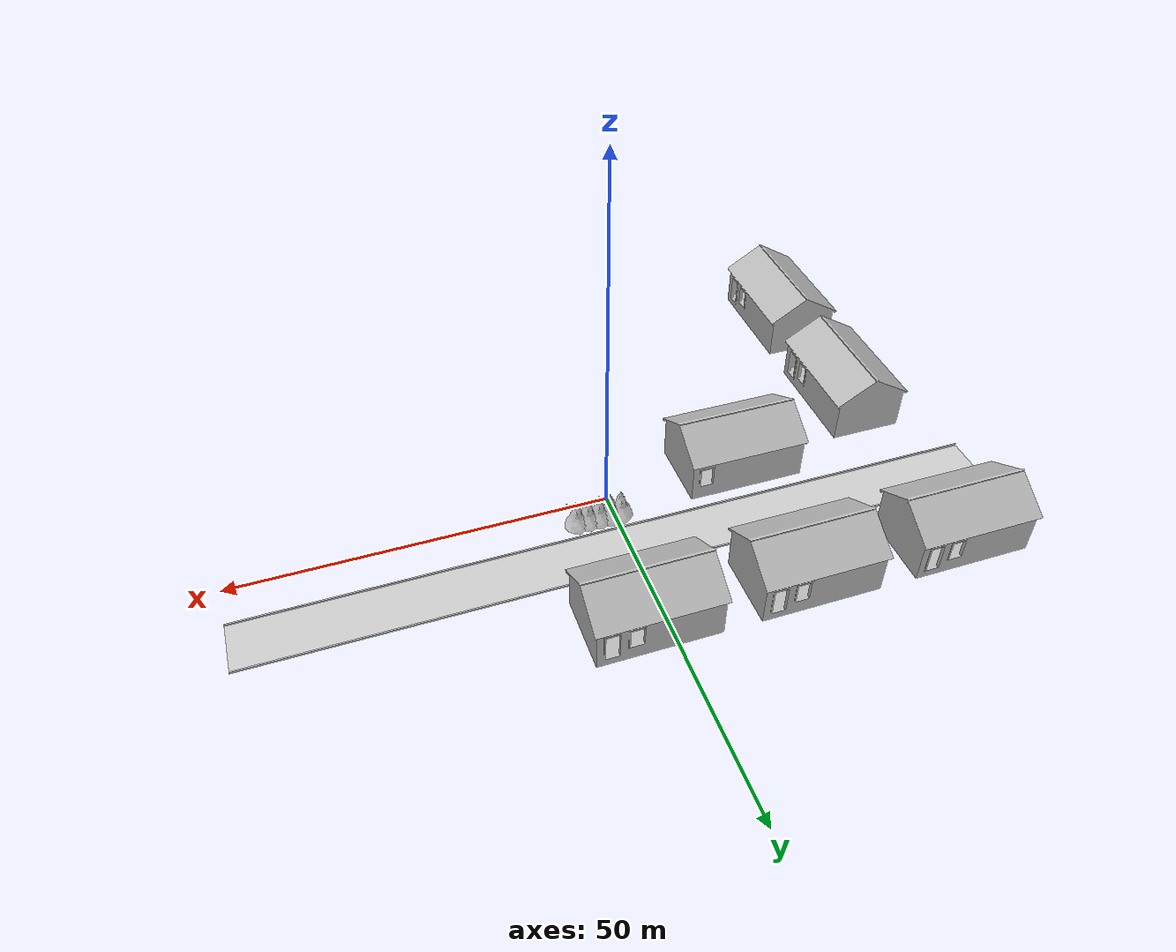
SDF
<sdf version="1.6">
 <world name="default">
  <light type="directional" name="sun">
   <pose>0.0 0.0 1000 -0.35 -0.5 0</pose>
   <diffuse>0.8 0.8 0.8 1</diffuse>
   <specular>0.2 0.2 0.2 1</specular>
   <attenuation>
    <range>1000</range>
    <constant>0.9</constant>
    <linear>0.01</linear>
    <quadratic>0.001</quadratic>
   </attenuation>
   <direction>-0.5 0.1 -0.9</direction>
  </light>
  <light type="spot" name="spot1">
   <pose>0 10 9 -0.1 0 0</pose>
   <diffuse>1 0.8431372549019608 0.4588235294117647 1</diffuse>
   <specular>.2 .2 .2 1</specular>
   <attenuation>
    <range>20</range>
    <linear>0.01</linear>
    <constant>0.2</constant>
    <quadratic>0.0</quadratic>
   </attenuation>
   <direction>0 0 -1</direction>
   <spot><inner_angle>0.11</inner_angle><outer_angle>20</outer_angle><falloff>40</falloff></spot>
   <cast_shadows>false</cast_shadows>
  </light>
  <light type="spot" name="spot2">
   <pose>-20 10 9 -0.1 0 0</pose>
   <diffuse>1 0.8431372549019608 0.4588235294117647 1</diffuse>
   <specular>.2 .2 .2 1</specular>
   <attenuation>
    <range>20</range>
    <linear>0.01</linear>
    <constant>0.2</constant>
    <quadratic>0.0</quadratic>
   </attenuation>
   <direction>0 0 -1</direction>
   <spot><inner_angle>0.11</inner_angle><outer_angle>20</outer_angle><falloff>40</falloff></spot>
   <cast_shadows>false</cast_shadows>
  </light>
  <light type="spot" name="spot3">
   <pose>-40 10 9 -0.1 0 0</pose>
   <diffuse>1 0.8431372549019608 0.4588235294117647 1</diffuse>
   <specular>.2 .2 .2 1</specular>
   <attenuation>
    <range>20</range>
    <linear>0.01</linear>
    <constant>0.2</constant>
    <quadratic>0.0</quadratic>
   </attenuation>
   <direction>0 0 -1</direction>
   <spot><inner_angle>0.11</inner_angle><outer_angle>20</outer_angle><falloff>40</falloff></spot>
   <cast_shadows>false</cast_shadows>
  </light>
  <gravity>0 0 -9.8</gravity>
  <magnetic_field>6e-06 2.3e-05 -4.2e-05</magnetic_field>
  <atmosphere type="adiabatic"/>
  <physics name="default_physics" default="0" type="ode">
   <dart><collision_detector>bullet</collision_detector></dart>
   <max_step_size>0.005</max_step_size>
   <real_time_factor>1</real_time_factor>
   <real_time_update_rate>200</real_time_update_rate>
  </physics>
  <scene>
   <ambient>0.9 0.9 0.9 1</ambient>
   <sky><clouds><speed>8</speed></clouds></sky>
   <grid>false</grid>
   <background>0.7 0.7 0.7 1</background>
   <shadows>1</shadows>
  </scene>
  <spherical_coordinates>
   <surface_model>EARTH_WGS84</surface_model>
   <latitude_deg>0</latitude_deg>
   <longitude_deg>0</longitude_deg>
   <elevation>0</elevation>
   <heading_deg>0</heading_deg>
  </spherical_coordinates>
  <include><uri>model://runway</uri><pose>0 9.15 0.05 0 0 1.571428571</pose><static>true</static></include>
  <include>
   <uri>model://pine_tree</uri>
   <pose>-0.5 4 0 0 0 0</pose>
   <name>pine_tree_00</name>
   <static>true</static>
  </include>
  <include>
   <uri>model://pine_tree</uri>
   <pose>1.0 4 0 0 0 0</pose>
   <name>pine_tree_01</name>
   <static>true</static>
  </include>
  <include>
   <uri>model://pine_tree</uri>
   <pose>2.5 4 0 0 0 0</pose>
   <name>pine_tree_02</name>
   <static>true</static>
  </include>
  <include>
   <uri>model://pine_tree</uri>
   <pose>4.0 4 0 0 0 0</pose>
   <name>pine_tree_03</name>
   <static>true</static>
  </include>
  <include>
   <uri>model://pine_tree</uri>
   <pose>5.5 4 0 0 0 0</pose>
   <name>pine_tree_04</name>
   <static>true</static>
  </include>
  <include><uri>model://peg</uri><pose>5.5623 -0.2259 0 0 0 0</pose><static>true</static></include>
  <include>
   <uri>model://guide</uri>
   <pose>0 5.5 0.1 0 0 1.571428571</pose>
   <name>guide_01</name>
   <static>true</static>
  </include>
  <include>
   <uri>model://guide</uri>
   <pose>0 12.75 0.1 0 0 1.571428571</pose>
   <name>guide_02</name>
   <static>true</static>
  </include>
  <include>
   <uri>model://barn</uri>
   <pose>-19 -2 0.3 0 0 0</pose>
   <name>barn_00</name>
   <static>true</static>
  </include>
  <include>
   <uri>model://barn</uri>
   <pose>-19 20 0.3 0 0 3.1427</pose>
   <name>barn_01</name>
   <static>true</static>
  </include>
  <include>
   <uri>model://barn</uri>
   <pose>-40 20 0.3 0 0 3.1427</pose>
   <name>barn_02</name>
   <static>true</static>
  </include>
  <include>
   <uri>model://barn</uri>
   <pose>2 20 0.3 0 0 3.1427</pose>
   <name>barn_03</name>
   <static>true</static>
  </include>
  <include>
   <uri>model://barn</uri>
   <pose>-40 -10 0.3 0 0 1.571428571</pose>
   <name>barn_04</name>
   <static>true</static>
  </include>
  <include>
   <uri>model://barn</uri>
   <pose>-40 -31 0.3 0 0 1.571428571</pose>
   <name>barn_05</name>
   <static>true</static>
  </include>
 </world>
</sdf>

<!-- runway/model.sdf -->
<sdf version="1.4">
  <model name="ground_plane">
    <static>true</static>
    <link name="link">
      <pose>0 0 0 0 0 0</pose>
      <collision name="collision">
        <geometry>
          <plane>
            <normal>0 0 1</normal>
            <size>7.1 50</size>
          </plane>
        </geometry>
        <surface>
          <friction>
            <ode>
              <mu>1</mu>
              <mu2>1</mu2>
            </ode>
          </friction>
        </surface>
      </collision>

      <visual name="runway">
        <cast_shadows>false</cast_shadows>
        <geometry>
          <plane>
            <normal>0 0 1</normal>
            <size>7.1 100</size>
          </plane>
        </geometry>
        <material>
          <script>
            <uri>file://media/materials/scripts/gazebo.material</uri>
            <name>Gazebo/Motorway</name>
          </script>
        </material>
      </visual>
    </link>
  </model>
</sdf>

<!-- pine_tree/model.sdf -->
<sdf version="1.6">
  <model name="pine_tree">
    <static>true</static>
    <link name="link">
      <collision name="collision">
        <geometry>
          <mesh>
            <uri>file://isr-testbed/pine_tree/meshes/pine_tree.dae</uri>
          </mesh>
        </geometry>
      </collision>
      <visual name="branch">
        <geometry>
          <mesh>
            <uri>file://isr-testbed/pine_tree/meshes/pine_tree.dae</uri>
            <submesh>
              <name>Branch</name>
            </submesh>
          </mesh>
        </geometry>
        <material>
          <script>
            <uri>file://isr-testbed/pine_tree/materials/scripts/</uri>
            <uri>file://isr-testbed/pine_tree/materials/textures/</uri>
            <name>PineTree/Branch</name>
          </script>
        </material>
      </visual>
      <visual name="bark">
        <geometry>
          <mesh>
            <uri>file://isr-testbed/pine_tree/meshes/pine_tree.dae</uri>
            <submesh>
              <name>Bark</name>
            </submesh>
          </mesh>
        </geometry>
        <material>
          <script>
            <uri>file://isr-testbed/pine_tree/materials/scripts/</uri>
            <uri>file://isr-testbed/pine_tree/materials/textures/</uri>
            <name>PineTree/Bark</name>
          </script>
        </material>
      </visual>
    </link>
  </model>
</sdf>

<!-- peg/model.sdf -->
<sdf version="1.5">
  <model name="peg">
    <link name="link">
      <pose>0 0 0.35 0 0 0</pose>
      <inertial>
        <mass>0.0175</mass>
        <inertia>
          <ixx>9.749231770833334e-06</ixx>
          <ixy>0</ixy>
          <ixz>0</ixz>
          <iyy>9.749231770833334e-06</iyy>
          <iyz>0</iyz>
          <izz>8.317968750000001e-07</izz>
        </inertia>
      </inertial>

      <collision name="collision">
        <geometry>
          <cylinder>
            <radius> 0.1 </radius>
            <length> 0.6 </length>
          </cylinder>
        </geometry>
        <surface>
          <contact>
            <!-- Red Pine coefficients for longitudinal axis of the wood
                 according to:
                 http://www.fpl.fs.fed.us/documnts/fplgtr/fplgtr113/ch04.pdf -->
            <poissons_ratio>0.347</poissons_ratio>
            <elastic_modulus>8.8e+09</elastic_modulus>
            <ode>
              <kp>100000</kp>
              <kd>100</kd>
              <max_vel>100.0</max_vel>
              <min_depth>0.001</min_depth>
            </ode>
          </contact>
          <friction>
            <torsional>
              <coefficient>1.0</coefficient>
              <use_patch_radius>0</use_patch_radius>
              <surface_radius>0.01</surface_radius>
            </torsional>
          </friction>
        </surface>
      </collision>

      <visual name="visual">
        <geometry>
          <cylinder>
            <radius> 0.1 </radius>
            <length> 0.6 </length>
          </cylinder>
        </geometry>
        <material>
          <script>
            <uri>file://media/materials/scripts/gazebo.material</uri>
            <name>Gazebo/Wood</name>
          </script>
        </material>
      </visual>

    </link>
  </model>
</sdf>

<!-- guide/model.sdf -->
<sdf version="1.4">
  <model name="guide">
    <link name="link">
      <pose>0 0 0 0 0 0</pose>
      <inertial>
        <mass>2.0</mass>
        <inertia>
          <ixx>1</ixx>
          <ixy>0</ixy>
          <ixz>0</ixz>
          <iyy>1</iyy>
          <iyz>0</iyz>
          <izz>1</izz>
        </inertia>
      </inertial>

      <collision name="collision">
        <geometry>
          <box>
            <size>0.2 100.0 0.2</size>
          </box>
        </geometry>
        <surface>
          <contact>
            <!-- Red Pine coefficients for longitudinal axis of the wood
                 according to:
                 http://www.fpl.fs.fed.us/documnts/fplgtr/fplgtr113/ch04.pdf -->
            <poissons_ratio>0.347</poissons_ratio>
            <elastic_modulus>8.8e+09</elastic_modulus>
            <ode>
              <kp>100000</kp>
              <kd>100</kd>
              <max_vel>100.0</max_vel>
              <min_depth>0.001</min_depth>
            </ode>
          </contact>
          <friction>
            <torsional>
              <coefficient>1.0</coefficient>
              <use_patch_radius>0</use_patch_radius>
              <surface_radius>0.01</surface_radius>
            </torsional>
          </friction>
        </surface>
      </collision>

      <visual name="visual">
        <geometry>
          <box>
            <size>0.2 100.0 0.2</size>
          </box>
        </geometry>
        <material>
          <script>
            <uri>file://media/materials/scripts/gazebo.material</uri>
            <name>Gazebo/Sidewalk</name>
          </script>
        </material>
      </visual>
    </link>
  </model>
</sdf>

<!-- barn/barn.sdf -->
<sdf version="1.5">
  <model name="barn">
    <link name="link">
      <inertial>
        <pose>0 0 0.06 0 0 0</pose>
        <mass>0.390</mass>
        <inertia>
          <ixx>0.00055575</ixx>
          <ixy>0</ixy>
          <ixz>0</ixz>
          <iyy>0.00055575</iyy>
          <iyz>0</iyz>
          <izz>0.0001755</izz>
        </inertia>
      </inertial>
      <visual name="visual">
        <pose>0 0 0 0 0 0</pose>
        <geometry>
          <mesh>
            <uri>model://barn/meshes/barn_stone_large.dae</uri>
            <size>0.1 0.1 0.1</size>
          </mesh>
        </geometry>
      </visual>
    </link>
  </model>
</sdf>
